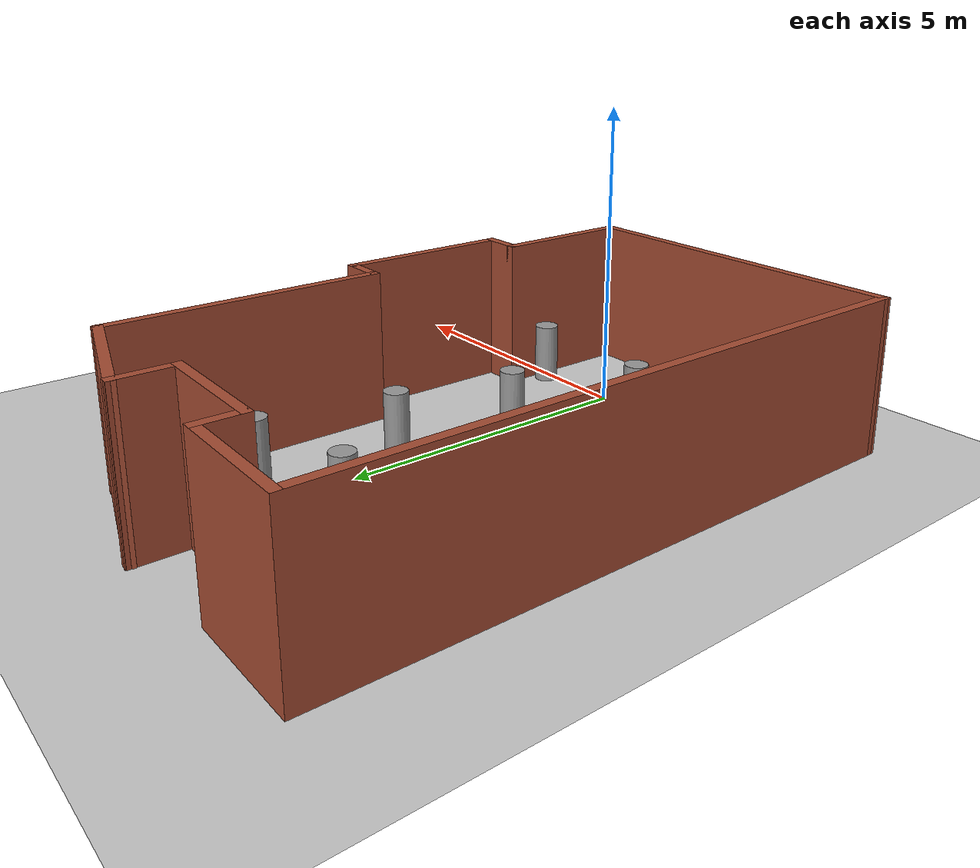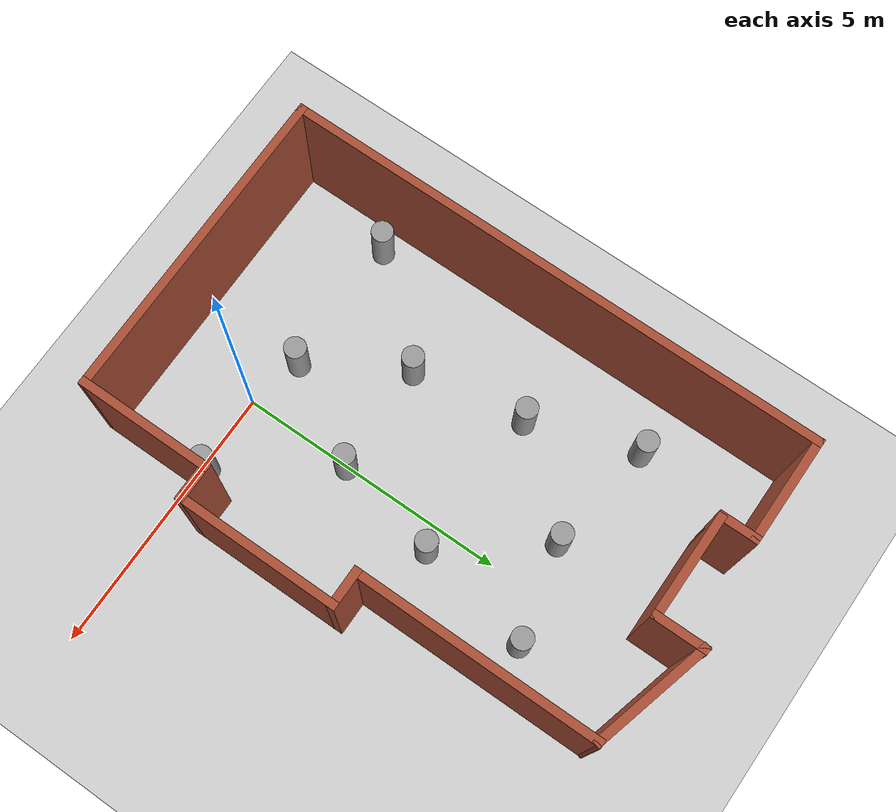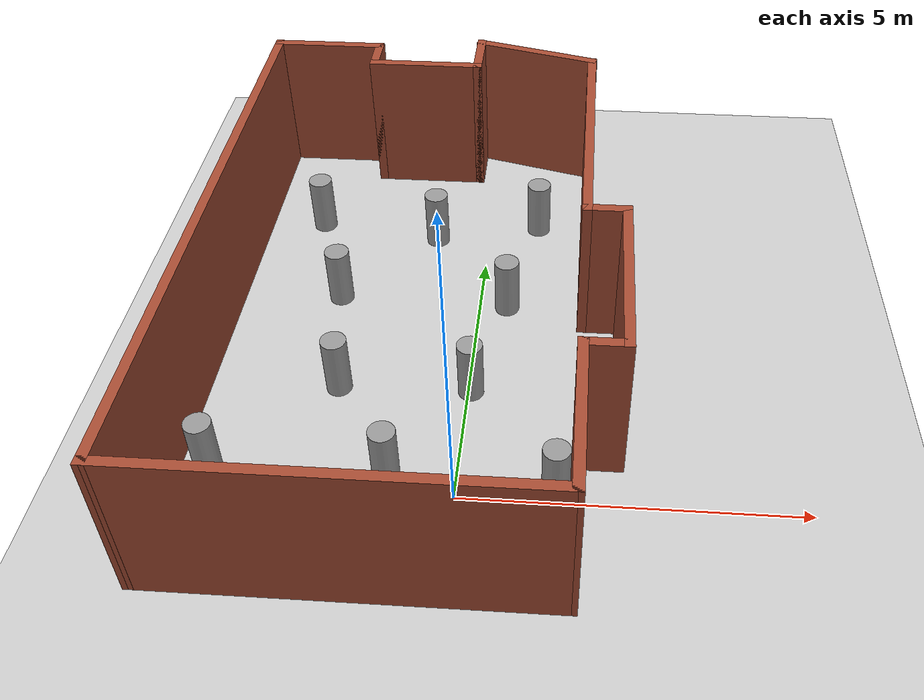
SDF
<sdf version="1.7">
 <world name="default">
  <light name="sun" type="directional">
   <pose>0 0 10 0 -0 0</pose>
   <diffuse>0.8 0.8 0.8 1</diffuse>
   <specular>0.2 0.2 0.2 1</specular>
   <attenuation>
    <range>1000</range>
    <constant>0.9</constant>
    <linear>0.01</linear>
    <quadratic>0.001</quadratic>
   </attenuation>
   <direction>-0.5 0.1 -0.9</direction>
   <spot><inner_angle>0</inner_angle><outer_angle>0</outer_angle><falloff>0</falloff></spot>
  </light>
  <model name="ground_plane">
   <static>1</static>
   <link name="link">
    <collision name="collision">
     <geometry><plane><normal>0 0 1</normal><size>100 100</size></plane></geometry>
     <surface><friction><ode><mu>100</mu><mu2>50</mu2></ode></friction></surface>
    </collision>
    <visual name="visual">
     <cast_shadows>0</cast_shadows>
     <geometry><plane><normal>0 0 1</normal><size>100 100</size></plane></geometry>
     <material>
      <script><uri>file://media/materials/scripts/gazebo.material</uri><name>Gazebo/Grey</name></script>
     </material>
    </visual>
   </link>
  </model>
  <gravity>0 0 -9.8</gravity>
  <magnetic_field>6e-06 2.3e-05 -4.2e-05</magnetic_field>
  <atmosphere type="adiabatic"/>
  <physics type="ode">
   <max_step_size>0.001</max_step_size>
   <real_time_factor>1</real_time_factor>
   <real_time_update_rate>1000</real_time_update_rate>
  </physics>
  <scene><ambient>0.4 0.4 0.4 1</ambient><background>0.7 0.7 0.7 1</background><shadows>1</shadows></scene>
  <spherical_coordinates>
   <surface_model>EARTH_WGS84</surface_model>
   <latitude_deg>0</latitude_deg>
   <longitude_deg>0</longitude_deg>
   <elevation>0</elevation>
   <heading_deg>0</heading_deg>
  </spherical_coordinates>
  <model name="bigRoomTurtle">
   <pose>-0.875821 3.38839 0 0 -0 0</pose>
   <link name="Wall_0">
    <collision name="Wall_0_Collision">
     <geometry><box><size>10 0.15 2.5</size></box></geometry>
     <pose>0 0 1.25 0 -0 0</pose>
    </collision>
    <visual name="Wall_0_Visual">
     <pose>0 0 1.25 0 -0 0</pose>
     <geometry><box><size>10 0.15 2.5</size></box></geometry>
     <material>
      <script><uri>file://media/materials/scripts/gazebo.material</uri><name>Gazebo/Bricks</name></script>
      <ambient>1 1 1 1</ambient>
     </material>
     <meta><layer>0</layer></meta>
    </visual>
    <pose>-3.16418 -0.133386 0 0 -0 1.5708</pose>
   </link>
   <link name="Wall_1">
    <collision name="Wall_1_Collision">
     <geometry><box><size>2 0.15 2.5</size></box></geometry>
     <pose>0 0 1.25 0 -0 0</pose>
    </collision>
    <visual name="Wall_1_Visual">
     <pose>0 0 1.25 0 -0 0</pose>
     <geometry><box><size>2 0.15 2.5</size></box></geometry>
     <material>
      <script><uri>file://media/materials/scripts/gazebo.material</uri><name>Gazebo/Bricks</name></script>
      <ambient>1 1 1 1</ambient>
     </material>
     <meta><layer>0</layer></meta>
    </visual>
    <pose>-2.23918 4.79162 0 0 -0 0</pose>
   </link>
   <link name="Wall_10">
    <collision name="Wall_10_Collision">
     <geometry><box><size>0.75 0.15 2.5</size></box></geometry>
     <pose>0 0 1.25 0 -0 0</pose>
    </collision>
    <visual name="Wall_10_Visual">
     <pose>0 0 1.25 0 -0 0</pose>
     <geometry><box><size>0.75 0.15 2.5</size></box></geometry>
     <material>
      <script><uri>file://media/materials/scripts/gazebo.material</uri><name>Gazebo/Bricks</name></script>
      <ambient>1 1 1 1</ambient>
     </material>
     <meta><layer>0</layer></meta>
    </visual>
    <pose>2.86427 -2.70191 0 0 -0 3.14159</pose>
   </link>
   <link name="Wall_11">
    <collision name="Wall_11_Collision">
     <geometry><box><size>2.5 0.15 2.5</size></box></geometry>
     <pose>0 0 1.25 0 -0 0</pose>
    </collision>
    <visual name="Wall_11_Visual">
     <pose>0 0 1.25 0 -0 0</pose>
     <geometry><box><size>2.5 0.15 2.5</size></box></geometry>
     <material>
      <script><uri>file://media/materials/scripts/gazebo.material</uri><name>Gazebo/Bricks</name></script>
      <ambient>1 1 1 1</ambient>
     </material>
     <meta><layer>0</layer></meta>
    </visual>
    <pose>2.56426 -3.87691 0 0 -0 -1.5708</pose>
   </link>
   <link name="Wall_12">
    <collision name="Wall_12_Collision">
     <geometry><box><size>5.87845 0.15 2.5</size></box></geometry>
     <pose>0 0 1.25 0 -0 0</pose>
    </collision>
    <visual name="Wall_12_Visual">
     <pose>0 0 1.25 0 -0 0</pose>
     <geometry><box><size>5.87845 0.15 2.5</size></box></geometry>
     <material>
      <script><uri>file://media/materials/scripts/gazebo.material</uri><name>Gazebo/Bricks</name></script>
      <ambient>1 1 1 1</ambient>
     </material>
     <meta><layer>0</layer></meta>
    </visual>
    <pose>-0.299957 -5.05515 0 0 -0 -3.14046</pose>
   </link>
   <link name="Wall_2">
    <collision name="Wall_2_Collision">
     <geometry><box><size>0.75 0.15 2.5</size></box></geometry>
     <pose>0 0 1.25 0 -0 0</pose>
    </collision>
    <visual name="Wall_2_Visual">
     <pose>0 0 1.25 0 -0 0</pose>
     <geometry><box><size>0.75 0.15 2.5</size></box></geometry>
     <material>
      <script><uri>file://media/materials/scripts/gazebo.material</uri><name>Gazebo/Bricks</name></script>
      <ambient>1 1 1 1</ambient>
     </material>
     <meta><layer>0</layer></meta>
    </visual>
    <pose>-1.31418 4.49161 0 0 -0 -1.5708</pose>
   </link>
   <link name="Wall_3">
    <collision name="Wall_3_Collision">
     <geometry><box><size>2 0.15 2.5</size></box></geometry>
     <pose>0 0 1.25 0 -0 0</pose>
    </collision>
    <visual name="Wall_3_Visual">
     <pose>0 0 1.25 0 -0 0</pose>
     <geometry><box><size>2 0.15 2.5</size></box></geometry>
     <material>
      <script><uri>file://media/materials/scripts/gazebo.material</uri><name>Gazebo/Bricks</name></script>
      <ambient>1 1 1 1</ambient>
     </material>
     <meta><layer>0</layer></meta>
    </visual>
    <pose>-0.389179 4.19161 0 0 -0 0</pose>
   </link>
   <link name="Wall_4">
    <collision name="Wall_4_Collision">
     <geometry><box><size>1 0.15 2.5</size></box></geometry>
     <pose>0 0 1.25 0 -0 0</pose>
    </collision>
    <visual name="Wall_4_Visual">
     <pose>0 0 1.25 0 -0 0</pose>
     <geometry><box><size>1 0.15 2.5</size></box></geometry>
     <material>
      <script><uri>file://media/materials/scripts/gazebo.material</uri><name>Gazebo/Bricks</name></script>
      <ambient>1 1 1 1</ambient>
     </material>
     <meta><layer>0</layer></meta>
    </visual>
    <pose>0.535821 4.61661 0 0 -0 1.5708</pose>
   </link>
   <link name="Wall_6">
    <collision name="Wall_6_Collision">
     <geometry><box><size>2.25 0.15 2.5</size></box></geometry>
     <pose>0 0 1.25 0 -0 0</pose>
    </collision>
    <visual name="Wall_6_Visual">
     <pose>0 0 1.25 0 -0 0</pose>
     <geometry><box><size>2.25 0.15 2.5</size></box></geometry>
     <material>
      <script><uri>file://media/materials/scripts/gazebo.material</uri><name>Gazebo/Bricks</name></script>
      <ambient>1 1 1 1</ambient>
     </material>
     <meta><layer>0</layer></meta>
    </visual>
    <pose>1.55004 4.76985 0 0 -0 -0.261799</pose>
   </link>
   <link name="Wall_7">
    <collision name="Wall_7_Collision">
     <geometry><box><size>4.5 0.15 2.5</size></box></geometry>
     <pose>0 0 1.25 0 -0 0</pose>
    </collision>
    <visual name="Wall_7_Visual">
     <pose>0 0 1.25 0 -0 0</pose>
     <geometry><box><size>4.5 0.15 2.5</size></box></geometry>
     <material>
      <script><uri>file://media/materials/scripts/gazebo.material</uri><name>Gazebo/Bricks</name></script>
      <ambient>1 1 1 1</ambient>
     </material>
     <meta><layer>0</layer></meta>
    </visual>
    <pose>2.56426 2.32309 0 0 -0 -1.5708</pose>
   </link>
   <link name="Wall_8">
    <collision name="Wall_8_Collision">
     <geometry><box><size>0.75 0.15 2.5</size></box></geometry>
     <pose>0 0 1.25 0 -0 0</pose>
    </collision>
    <visual name="Wall_8_Visual">
     <pose>0 0 1.25 0 -0 0</pose>
     <geometry><box><size>0.75 0.15 2.5</size></box></geometry>
     <material>
      <script><uri>file://media/materials/scripts/gazebo.material</uri><name>Gazebo/Bricks</name></script>
      <ambient>1 1 1 1</ambient>
     </material>
     <meta><layer>0</layer></meta>
    </visual>
    <pose>2.86427 0.148094 0 0 -0 0</pose>
   </link>
   <link name="Wall_9">
    <collision name="Wall_9_Collision">
     <geometry><box><size>3 0.15 2.5</size></box></geometry>
     <pose>0 0 1.25 0 -0 0</pose>
    </collision>
    <visual name="Wall_9_Visual">
     <pose>0 0 1.25 0 -0 0</pose>
     <geometry><box><size>3 0.15 2.5</size></box></geometry>
     <material>
      <script><uri>file://media/materials/scripts/gazebo.material</uri><name>Gazebo/Bricks</name></script>
      <ambient>1 1 1 1</ambient>
     </material>
     <meta><layer>0</layer></meta>
    </visual>
    <pose>3.16426 -1.27691 0 0 -0 -1.5708</pose>
   </link>
   <static>1</static>
  </model>
  <model name="cylinders">
   <link name="link_1">
    <inertial>
     <mass>0.156183</mass>
     <inertia>
      <ixx>0.0145398</ixx>
      <ixy>0</ixy>
      <ixz>0</ixz>
      <iyy>0.0145398</iyy>
      <iyz>0</iyz>
      <izz>0.0030492</izz>
     </inertia>
    </inertial>
    <pose>1.0434 -1.02077 0 0 -0 0</pose>
    <visual name="visual">
     <geometry><cylinder><radius>0.197602</radius><length>1</length></cylinder></geometry>
     <material>
      <lighting>1</lighting>
      <script><uri>file://media/materials/scripts/gazebo.material</uri><name>Gazebo/Grey</name></script>
      <shader type="pixel"/>
     </material>
    </visual>
    <collision name="collision">
     <geometry><cylinder><radius>0.197602</radius><length>1</length></cylinder></geometry>
     <surface>
      <friction>
       <ode><mu>1</mu><mu2>1</mu2><fdir1>0 0 0</fdir1><slip1>0</slip1><slip2>0</slip2></ode>
       <torsional>
        <coefficient>1</coefficient>
        <patch_radius>0</patch_radius>
        <surface_radius>0</surface_radius>
        <use_patch_radius>1</use_patch_radius>
        <ode><slip>0</slip></ode>
       </torsional>
      </friction>
      <bounce><restitution_coefficient>0</restitution_coefficient><threshold>1e+06</threshold></bounce>
      <contact>
       <collide_without_contact>0</collide_without_contact>
       <collide_without_contact_bitmask>1</collide_without_contact_bitmask>
       <collide_bitmask>1</collide_bitmask>
       <ode>
        <soft_cfm>0</soft_cfm>
        <soft_erp>0.2</soft_erp>
        <kp>1e+13</kp>
        <kd>1</kd>
        <max_vel>0.01</max_vel>
        <min_depth>0</min_depth>
       </ode>
       <bullet>
        <split_impulse>1</split_impulse>
        <split_impulse_penetration_threshold>-0.01</split_impulse_penetration_threshold>
        <soft_cfm>0</soft_cfm>
        <soft_erp>0.2</soft_erp>
        <kp>1e+13</kp>
        <kd>1</kd>
       </bullet>
      </contact>
     </surface>
    </collision>
   </link>
   <link name="link_1_clone">
    <inertial>
     <mass>0.156183</mass>
     <inertia>
      <ixx>0.0145398</ixx>
      <ixy>0</ixy>
      <ixz>0</ixz>
      <iyy>0.0145398</iyy>
      <iyz>0</iyz>
      <izz>0.0030492</izz>
     </inertia>
    </inertial>
    <pose>-0.989595 -1.06111 0 0 -0 0</pose>
    <visual name="visual">
     <geometry><cylinder><radius>0.197602</radius><length>1</length></cylinder></geometry>
     <material>
      <lighting>1</lighting>
      <script><uri>file://media/materials/scripts/gazebo.material</uri><name>Gazebo/Grey</name></script>
      <shader type="pixel"/>
     </material>
    </visual>
    <collision name="collision">
     <geometry><cylinder><radius>0.197602</radius><length>1</length></cylinder></geometry>
     <surface>
      <friction>
       <ode><mu>1</mu><mu2>1</mu2><fdir1>0 0 0</fdir1><slip1>0</slip1><slip2>0</slip2></ode>
       <torsional>
        <coefficient>1</coefficient>
        <patch_radius>0</patch_radius>
        <surface_radius>0</surface_radius>
        <use_patch_radius>1</use_patch_radius>
        <ode><slip>0</slip></ode>
       </torsional>
      </friction>
      <bounce><restitution_coefficient>0</restitution_coefficient><threshold>1e+06</threshold></bounce>
      <contact>
       <collide_without_contact>0</collide_without_contact>
       <collide_without_contact_bitmask>1</collide_without_contact_bitmask>
       <collide_bitmask>1</collide_bitmask>
       <ode>
        <soft_cfm>0</soft_cfm>
        <soft_erp>0.2</soft_erp>
        <kp>1e+13</kp>
        <kd>1</kd>
        <max_vel>0.01</max_vel>
        <min_depth>0</min_depth>
       </ode>
       <bullet>
        <split_impulse>1</split_impulse>
        <split_impulse_penetration_threshold>-0.01</split_impulse_penetration_threshold>
        <soft_cfm>0</soft_cfm>
        <soft_erp>0.2</soft_erp>
        <kp>1e+13</kp>
        <kd>1</kd>
       </bullet>
      </contact>
     </surface>
    </collision>
   </link>
   <link name="link_1_clone_0">
    <inertial>
     <mass>0.156183</mass>
     <inertia>
      <ixx>0.0145398</ixx>
      <ixy>0</ixy>
      <ixz>0</ixz>
      <iyy>0.0145398</iyy>
      <iyz>0</iyz>
      <izz>0.0030492</izz>
     </inertia>
    </inertial>
    <pose>1.45043 0.917847 0 0 -0 0</pose>
    <visual name="visual">
     <geometry><cylinder><radius>0.197602</radius><length>1</length></cylinder></geometry>
     <material>
      <lighting>1</lighting>
      <script><uri>file://media/materials/scripts/gazebo.material</uri><name>Gazebo/Grey</name></script>
      <shader type="pixel"/>
     </material>
    </visual>
    <collision name="collision">
     <geometry><cylinder><radius>0.197602</radius><length>1</length></cylinder></geometry>
     <surface>
      <friction>
       <ode><mu>1</mu><mu2>1</mu2><fdir1>0 0 0</fdir1><slip1>0</slip1><slip2>0</slip2></ode>
       <torsional>
        <coefficient>1</coefficient>
        <patch_radius>0</patch_radius>
        <surface_radius>0</surface_radius>
        <use_patch_radius>1</use_patch_radius>
        <ode><slip>0</slip></ode>
       </torsional>
      </friction>
      <bounce><restitution_coefficient>0</restitution_coefficient><threshold>1e+06</threshold></bounce>
      <contact>
       <collide_without_contact>0</collide_without_contact>
       <collide_without_contact_bitmask>1</collide_without_contact_bitmask>
       <collide_bitmask>1</collide_bitmask>
       <ode>
        <soft_cfm>0</soft_cfm>
        <soft_erp>0.2</soft_erp>
        <kp>1e+13</kp>
        <kd>1</kd>
        <max_vel>0.01</max_vel>
        <min_depth>0</min_depth>
       </ode>
       <bullet>
        <split_impulse>1</split_impulse>
        <split_impulse_penetration_threshold>-0.01</split_impulse_penetration_threshold>
        <soft_cfm>0</soft_cfm>
        <soft_erp>0.2</soft_erp>
        <kp>1e+13</kp>
        <kd>1</kd>
       </bullet>
      </contact>
     </surface>
    </collision>
   </link>
   <link name="link_1_clone_1">
    <inertial>
     <mass>0.156183</mass>
     <inertia>
      <ixx>0.0145398</ixx>
      <ixy>0</ixy>
      <ixz>0</ixz>
      <iyy>0.0145398</iyy>
      <iyz>0</iyz>
      <izz>0.0030492</izz>
     </inertia>
    </inertial>
    <pose>-1.34189 0.998118 0 0 -0 0</pose>
    <visual name="visual">
     <geometry><cylinder><radius>0.197602</radius><length>1</length></cylinder></geometry>
     <material>
      <lighting>1</lighting>
      <script><uri>file://media/materials/scripts/gazebo.material</uri><name>Gazebo/Grey</name></script>
      <shader type="pixel"/>
     </material>
    </visual>
    <collision name="collision">
     <geometry><cylinder><radius>0.197602</radius><length>1</length></cylinder></geometry>
     <surface>
      <friction>
       <ode><mu>1</mu><mu2>1</mu2><fdir1>0 0 0</fdir1><slip1>0</slip1><slip2>0</slip2></ode>
       <torsional>
        <coefficient>1</coefficient>
        <patch_radius>0</patch_radius>
        <surface_radius>0</surface_radius>
        <use_patch_radius>1</use_patch_radius>
        <ode><slip>0</slip></ode>
       </torsional>
      </friction>
      <bounce><restitution_coefficient>0</restitution_coefficient><threshold>1e+06</threshold></bounce>
      <contact>
       <collide_without_contact>0</collide_without_contact>
       <collide_without_contact_bitmask>1</collide_without_contact_bitmask>
       <collide_bitmask>1</collide_bitmask>
       <ode>
        <soft_cfm>0</soft_cfm>
        <soft_erp>0.2</soft_erp>
        <kp>1e+13</kp>
        <kd>1</kd>
        <max_vel>0.01</max_vel>
        <min_depth>0</min_depth>
       </ode>
       <bullet>
        <split_impulse>1</split_impulse>
        <split_impulse_penetration_threshold>-0.01</split_impulse_penetration_threshold>
        <soft_cfm>0</soft_cfm>
        <soft_erp>0.2</soft_erp>
        <kp>1e+13</kp>
        <kd>1</kd>
       </bullet>
      </contact>
     </surface>
    </collision>
   </link>
   <link name="link_1_clone_2">
    <inertial>
     <mass>0.156183</mass>
     <inertia>
      <ixx>0.0145398</ixx>
      <ixy>0</ixy>
      <ixz>0</ixz>
      <iyy>0.0145398</iyy>
      <iyz>0</iyz>
      <izz>0.0030492</izz>
     </inertia>
    </inertial>
    <pose>0.08807 2.64701 0 0 -0 0</pose>
    <visual name="visual">
     <geometry><cylinder><radius>0.197602</radius><length>1</length></cylinder></geometry>
     <material>
      <lighting>1</lighting>
      <script><uri>file://media/materials/scripts/gazebo.material</uri><name>Gazebo/Grey</name></script>
      <shader type="pixel"/>
     </material>
    </visual>
    <collision name="collision">
     <geometry><cylinder><radius>0.197602</radius><length>1</length></cylinder></geometry>
     <surface>
      <friction>
       <ode><mu>1</mu><mu2>1</mu2><fdir1>0 0 0</fdir1><slip1>0</slip1><slip2>0</slip2></ode>
       <torsional>
        <coefficient>1</coefficient>
        <patch_radius>0</patch_radius>
        <surface_radius>0</surface_radius>
        <use_patch_radius>1</use_patch_radius>
        <ode><slip>0</slip></ode>
       </torsional>
      </friction>
      <bounce><restitution_coefficient>0</restitution_coefficient><threshold>1e+06</threshold></bounce>
      <contact>
       <collide_without_contact>0</collide_without_contact>
       <collide_without_contact_bitmask>1</collide_without_contact_bitmask>
       <collide_bitmask>1</collide_bitmask>
       <ode>
        <soft_cfm>0</soft_cfm>
        <soft_erp>0.2</soft_erp>
        <kp>1e+13</kp>
        <kd>1</kd>
        <max_vel>0.01</max_vel>
        <min_depth>0</min_depth>
       </ode>
       <bullet>
        <split_impulse>1</split_impulse>
        <split_impulse_penetration_threshold>-0.01</split_impulse_penetration_threshold>
        <soft_cfm>0</soft_cfm>
        <soft_erp>0.2</soft_erp>
        <kp>1e+13</kp>
        <kd>1</kd>
       </bullet>
      </contact>
     </surface>
    </collision>
   </link>
   <link name="link_1_clone_3">
    <inertial>
     <mass>0.156183</mass>
     <inertia>
      <ixx>0.0145398</ixx>
      <ixy>0</ixy>
      <ixz>0</ixz>
      <iyy>0.0145398</iyy>
      <iyz>0</iyz>
      <izz>0.0030492</izz>
     </inertia>
    </inertial>
    <pose>1.86435 3.06402 0 0 -0 0</pose>
    <visual name="visual">
     <geometry><cylinder><radius>0.197602</radius><length>1</length></cylinder></geometry>
     <material>
      <lighting>1</lighting>
      <script><uri>file://media/materials/scripts/gazebo.material</uri><name>Gazebo/Grey</name></script>
      <shader type="pixel"/>
     </material>
    </visual>
    <collision name="collision">
     <geometry><cylinder><radius>0.197602</radius><length>1</length></cylinder></geometry>
     <surface>
      <friction>
       <ode><mu>1</mu><mu2>1</mu2><fdir1>0 0 0</fdir1><slip1>0</slip1><slip2>0</slip2></ode>
       <torsional>
        <coefficient>1</coefficient>
        <patch_radius>0</patch_radius>
        <surface_radius>0</surface_radius>
        <use_patch_radius>1</use_patch_radius>
        <ode><slip>0</slip></ode>
       </torsional>
      </friction>
      <bounce><restitution_coefficient>0</restitution_coefficient><threshold>1e+06</threshold></bounce>
      <contact>
       <collide_without_contact>0</collide_without_contact>
       <collide_without_contact_bitmask>1</collide_without_contact_bitmask>
       <collide_bitmask>1</collide_bitmask>
       <ode>
        <soft_cfm>0</soft_cfm>
        <soft_erp>0.2</soft_erp>
        <kp>1e+13</kp>
        <kd>1</kd>
        <max_vel>0.01</max_vel>
        <min_depth>0</min_depth>
       </ode>
       <bullet>
        <split_impulse>1</split_impulse>
        <split_impulse_penetration_threshold>-0.01</split_impulse_penetration_threshold>
        <soft_cfm>0</soft_cfm>
        <soft_erp>0.2</soft_erp>
        <kp>1e+13</kp>
        <kd>1</kd>
       </bullet>
      </contact>
     </surface>
    </collision>
   </link>
   <link name="link_1_clone_4">
    <inertial>
     <mass>0.156183</mass>
     <inertia>
      <ixx>0.0145398</ixx>
      <ixy>0</ixy>
      <ixz>0</ixz>
      <iyy>0.0145398</iyy>
      <iyz>0</iyz>
      <izz>0.0030492</izz>
     </inertia>
    </inertial>
    <pose>-2.01165 2.94301 0 0 -0 0</pose>
    <visual name="visual">
     <geometry><cylinder><radius>0.197602</radius><length>1</length></cylinder></geometry>
     <material>
      <lighting>1</lighting>
      <script><uri>file://media/materials/scripts/gazebo.material</uri><name>Gazebo/Grey</name></script>
      <shader type="pixel"/>
     </material>
    </visual>
    <collision name="collision">
     <geometry><cylinder><radius>0.197602</radius><length>1</length></cylinder></geometry>
     <surface>
      <friction>
       <ode><mu>1</mu><mu2>1</mu2><fdir1>0 0 0</fdir1><slip1>0</slip1><slip2>0</slip2></ode>
       <torsional>
        <coefficient>1</coefficient>
        <patch_radius>0</patch_radius>
        <surface_radius>0</surface_radius>
        <use_patch_radius>1</use_patch_radius>
        <ode><slip>0</slip></ode>
       </torsional>
      </friction>
      <bounce><restitution_coefficient>0</restitution_coefficient><threshold>1e+06</threshold></bounce>
      <contact>
       <collide_without_contact>0</collide_without_contact>
       <collide_without_contact_bitmask>1</collide_without_contact_bitmask>
       <collide_bitmask>1</collide_bitmask>
       <ode>
        <soft_cfm>0</soft_cfm>
        <soft_erp>0.2</soft_erp>
        <kp>1e+13</kp>
        <kd>1</kd>
        <max_vel>0.01</max_vel>
        <min_depth>0</min_depth>
       </ode>
       <bullet>
        <split_impulse>1</split_impulse>
        <split_impulse_penetration_threshold>-0.01</split_impulse_penetration_threshold>
        <soft_cfm>0</soft_cfm>
        <soft_erp>0.2</soft_erp>
        <kp>1e+13</kp>
        <kd>1</kd>
       </bullet>
      </contact>
     </surface>
    </collision>
   </link>
   <link name="link_1_clone_5">
    <inertial>
     <mass>0.156183</mass>
     <inertia>
      <ixx>0.0145398</ixx>
      <ixy>0</ixy>
      <ixz>0</ixz>
      <iyy>0.0145398</iyy>
      <iyz>0</iyz>
      <izz>0.0030492</izz>
     </inertia>
    </inertial>
    <pose>0.015265 -2.77171 0 0 -0 0</pose>
    <visual name="visual">
     <geometry><cylinder><radius>0.197602</radius><length>1</length></cylinder></geometry>
     <material>
      <lighting>1</lighting>
      <script><uri>file://media/materials/scripts/gazebo.material</uri><name>Gazebo/Grey</name></script>
      <shader type="pixel"/>
     </material>
    </visual>
    <collision name="collision">
     <geometry><cylinder><radius>0.197602</radius><length>1</length></cylinder></geometry>
     <surface>
      <friction>
       <ode><mu>1</mu><mu2>1</mu2><fdir1>0 0 0</fdir1><slip1>0</slip1><slip2>0</slip2></ode>
       <torsional>
        <coefficient>1</coefficient>
        <patch_radius>0</patch_radius>
        <surface_radius>0</surface_radius>
        <use_patch_radius>1</use_patch_radius>
        <ode><slip>0</slip></ode>
       </torsional>
      </friction>
      <bounce><restitution_coefficient>0</restitution_coefficient><threshold>1e+06</threshold></bounce>
      <contact>
       <collide_without_contact>0</collide_without_contact>
       <collide_without_contact_bitmask>1</collide_without_contact_bitmask>
       <collide_bitmask>1</collide_bitmask>
       <ode>
        <soft_cfm>0</soft_cfm>
        <soft_erp>0.2</soft_erp>
        <kp>1e+13</kp>
        <kd>1</kd>
        <max_vel>0.01</max_vel>
        <min_depth>0</min_depth>
       </ode>
       <bullet>
        <split_impulse>1</split_impulse>
        <split_impulse_penetration_threshold>-0.01</split_impulse_penetration_threshold>
        <soft_cfm>0</soft_cfm>
        <soft_erp>0.2</soft_erp>
        <kp>1e+13</kp>
        <kd>1</kd>
       </bullet>
      </contact>
     </surface>
    </collision>
   </link>
   <link name="link_1_clone_6">
    <inertial>
     <mass>0.156183</mass>
     <inertia>
      <ixx>0.0145398</ixx>
      <ixy>0</ixy>
      <ixz>0</ixz>
      <iyy>0.0145398</iyy>
      <iyz>0</iyz>
      <izz>0.0030492</izz>
     </inertia>
    </inertial>
    <pose>-2.53328 -2.78947 0 0 -0 0</pose>
    <visual name="visual">
     <geometry><cylinder><radius>0.197602</radius><length>1</length></cylinder></geometry>
     <material>
      <lighting>1</lighting>
      <script><uri>file://media/materials/scripts/gazebo.material</uri><name>Gazebo/Grey</name></script>
      <shader type="pixel"/>
     </material>
    </visual>
    <collision name="collision">
     <geometry><cylinder><radius>0.197602</radius><length>1</length></cylinder></geometry>
     <surface>
      <friction>
       <ode><mu>1</mu><mu2>1</mu2><fdir1>0 0 0</fdir1><slip1>0</slip1><slip2>0</slip2></ode>
       <torsional>
        <coefficient>1</coefficient>
        <patch_radius>0</patch_radius>
        <surface_radius>0</surface_radius>
        <use_patch_radius>1</use_patch_radius>
        <ode><slip>0</slip></ode>
       </torsional>
      </friction>
      <bounce><restitution_coefficient>0</restitution_coefficient><threshold>1e+06</threshold></bounce>
      <contact>
       <collide_without_contact>0</collide_without_contact>
       <collide_without_contact_bitmask>1</collide_without_contact_bitmask>
       <collide_bitmask>1</collide_bitmask>
       <ode>
        <soft_cfm>0</soft_cfm>
        <soft_erp>0.2</soft_erp>
        <kp>1e+13</kp>
        <kd>1</kd>
        <max_vel>0.01</max_vel>
        <min_depth>0</min_depth>
       </ode>
       <bullet>
        <split_impulse>1</split_impulse>
        <split_impulse_penetration_threshold>-0.01</split_impulse_penetration_threshold>
        <soft_cfm>0</soft_cfm>
        <soft_erp>0.2</soft_erp>
        <kp>1e+13</kp>
        <kd>1</kd>
       </bullet>
      </contact>
     </surface>
    </collision>
   </link>
   <link name="link_1_clone_7">
    <inertial>
     <mass>0.156183</mass>
     <inertia>
      <ixx>0.0145398</ixx>
      <ixy>0</ixy>
      <ixz>0</ixz>
      <iyy>0.0145398</iyy>
      <iyz>0</iyz>
      <izz>0.0030492</izz>
     </inertia>
    </inertial>
    <pose>2.41491 -2.92693 0 0 -0 0</pose>
    <visual name="visual">
     <geometry><cylinder><radius>0.197602</radius><length>1</length></cylinder></geometry>
     <material>
      <lighting>1</lighting>
      <script><uri>file://media/materials/scripts/gazebo.material</uri><name>Gazebo/Grey</name></script>
      <shader type="pixel"/>
     </material>
    </visual>
    <collision name="collision">
     <geometry><cylinder><radius>0.197602</radius><length>1</length></cylinder></geometry>
     <surface>
      <friction>
       <ode><mu>1</mu><mu2>1</mu2><fdir1>0 0 0</fdir1><slip1>0</slip1><slip2>0</slip2></ode>
       <torsional>
        <coefficient>1</coefficient>
        <patch_radius>0</patch_radius>
        <surface_radius>0</surface_radius>
        <use_patch_radius>1</use_patch_radius>
        <ode><slip>0</slip></ode>
       </torsional>
      </friction>
      <bounce><restitution_coefficient>0</restitution_coefficient><threshold>1e+06</threshold></bounce>
      <contact>
       <collide_without_contact>0</collide_without_contact>
       <collide_without_contact_bitmask>1</collide_without_contact_bitmask>
       <collide_bitmask>1</collide_bitmask>
       <ode>
        <soft_cfm>0</soft_cfm>
        <soft_erp>0.2</soft_erp>
        <kp>1e+13</kp>
        <kd>1</kd>
        <max_vel>0.01</max_vel>
        <min_depth>0</min_depth>
       </ode>
       <bullet>
        <split_impulse>1</split_impulse>
        <split_impulse_penetration_threshold>-0.01</split_impulse_penetration_threshold>
        <soft_cfm>0</soft_cfm>
        <soft_erp>0.2</soft_erp>
        <kp>1e+13</kp>
        <kd>1</kd>
       </bullet>
      </contact>
     </surface>
    </collision>
   </link>
   <static>0</static>
   <pose>-1.00775 3.0492 0.5 0 -0 0</pose>
  </model>
 </world>
</sdf>
